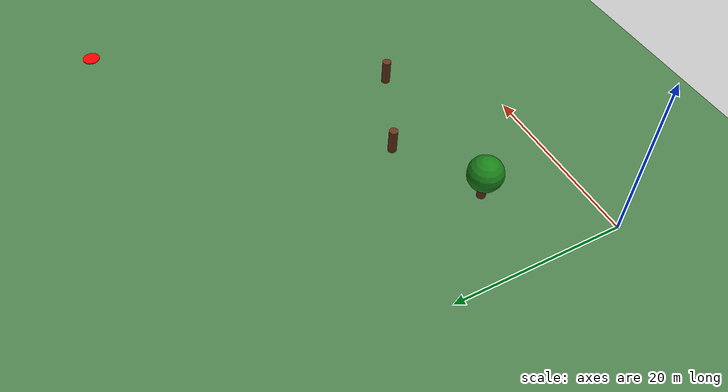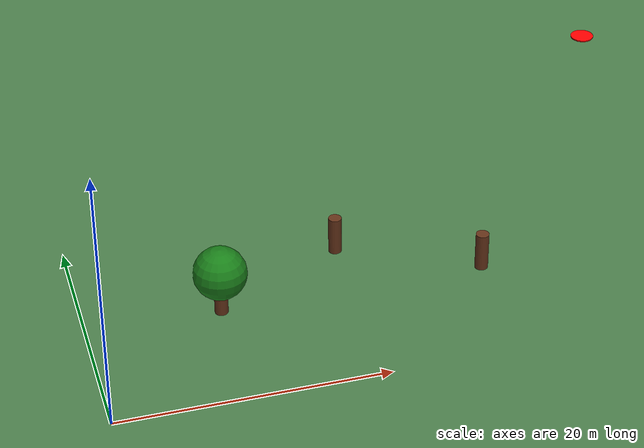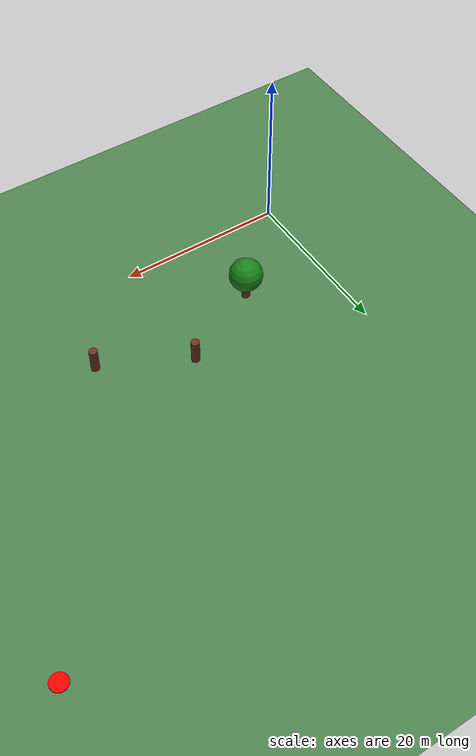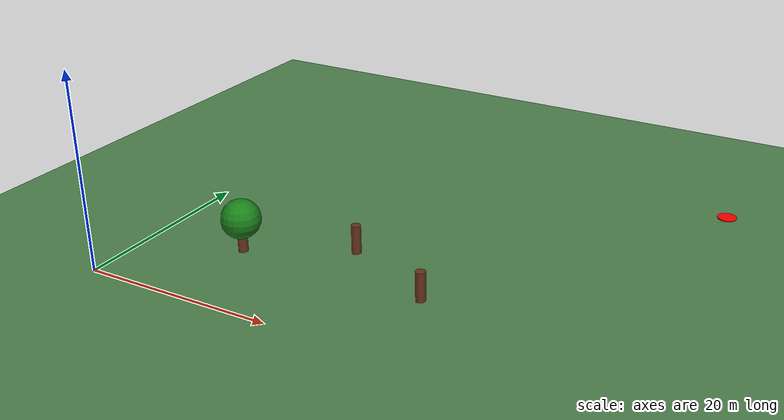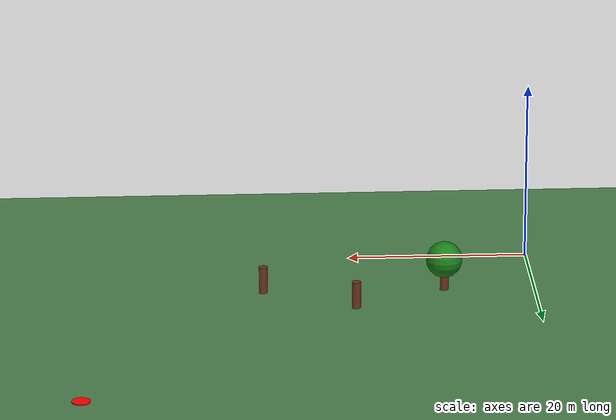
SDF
<?xml version="1.0"?>
<sdf version="1.6">
  <world name="durian_orchard">

    <!-- Physics -->
    <physics type="ode">
      <max_step_size>0.001</max_step_size>
      <real_time_factor>1.0</real_time_factor>
      <real_time_update_rate>1000</real_time_update_rate>
    </physics>

    <!-- Scene -->
    <scene>
      <ambient>0.4 0.4 0.4 1</ambient>
      <background>0.7 0.7 0.7 1</background>
      <shadows>true</shadows>
    </scene>

    <!-- Sun -->
    <include>
      <uri>model://sun</uri>
    </include>

    <!-- Ground -->
    <model name="ground_plane">
      <static>true</static>
      <link name="link">
        <collision name="collision">
          <geometry>
            <plane>
              <normal>0 0 1</normal>
              <size>200 200</size>
            </plane>
          </geometry>
        </collision>
        <visual name="visual">
          <geometry>
            <plane>
              <normal>0 0 1</normal>
              <size>200 200</size>
            </plane>
          </geometry>
          <material>
            <ambient>0.3 0.5 0.3 1</ambient>
            <diffuse>0.3 0.5 0.3 1</diffuse>
          </material>
        </visual>
      </link>
    </model>

    <!-- Obstacles (Durian Trees) -->
    <model name="tree_1">
      <pose>10 10 1.5 0 0 0</pose>
      <static>true</static>
      <link name="trunk">
        <visual name="visual">
          <geometry>
            <cylinder>
              <radius>0.5</radius>
              <length>3</length>
            </cylinder>
          </geometry>
          <material>
            <ambient>0.4 0.2 0.1 1</ambient>
            <diffuse>0.4 0.2 0.1 1</diffuse>
          </material>
        </visual>
        <collision name="collision">
          <geometry>
            <cylinder>
              <radius>0.5</radius>
              <length>3</length>
            </cylinder>
          </geometry>
        </collision>
      </link>
      <link name="foliage">
        <pose>0 0 2 0 0 0</pose>
        <visual name="visual">
          <geometry>
            <sphere>
              <radius>2</radius>
            </sphere>
          </geometry>
          <material>
            <ambient>0.1 0.5 0.1 1</ambient>
            <diffuse>0.1 0.5 0.1 1</diffuse>
          </material>
        </visual>
      </link>
    </model>

    <model name="tree_2">
      <pose>20 15 1.5 0 0 0</pose>
      <static>true</static>
      <link name="trunk">
        <visual name="visual">
          <geometry>
            <cylinder>
              <radius>0.5</radius>
              <length>3</length>
            </cylinder>
          </geometry>
          <material>
            <ambient>0.4 0.2 0.1 1</ambient>
          </material>
        </visual>
        <collision name="collision">
          <geometry>
            <cylinder>
              <radius>0.5</radius>
              <length>3</length>
            </cylinder>
          </geometry>
        </collision>
      </link>
    </model>

    <model name="tree_3">
      <pose>30 10 1.5 0 0 0</pose>
      <static>true</static>
      <link name="trunk">
        <visual name="visual">
          <geometry>
            <cylinder>
              <radius>0.5</radius>
              <length>3</length>
            </cylinder>
          </geometry>
          <material>
            <ambient>0.4 0.2 0.1 1</ambient>
          </material>
        </visual>
        <collision name="collision">
          <geometry>
            <cylinder>
              <radius>0.5</radius>
              <length>3</length>
            </cylinder>
          </geometry>
        </collision>
      </link>
    </model>

    <!-- Target marker -->
    <model name="target">
      <pose>50 40 0.1 0 0 0</pose>
      <static>true</static>
      <link name="link">
        <visual name="visual">
          <geometry>
            <cylinder>
              <radius>1</radius>
              <length>0.1</length>
            </cylinder>
          </geometry>
          <material>
            <ambient>1 0 0 1</ambient>
            <diffuse>1 0 0 1</diffuse>
          </material>
        </visual>
      </link>
    </model>

  </world>
</sdf>
